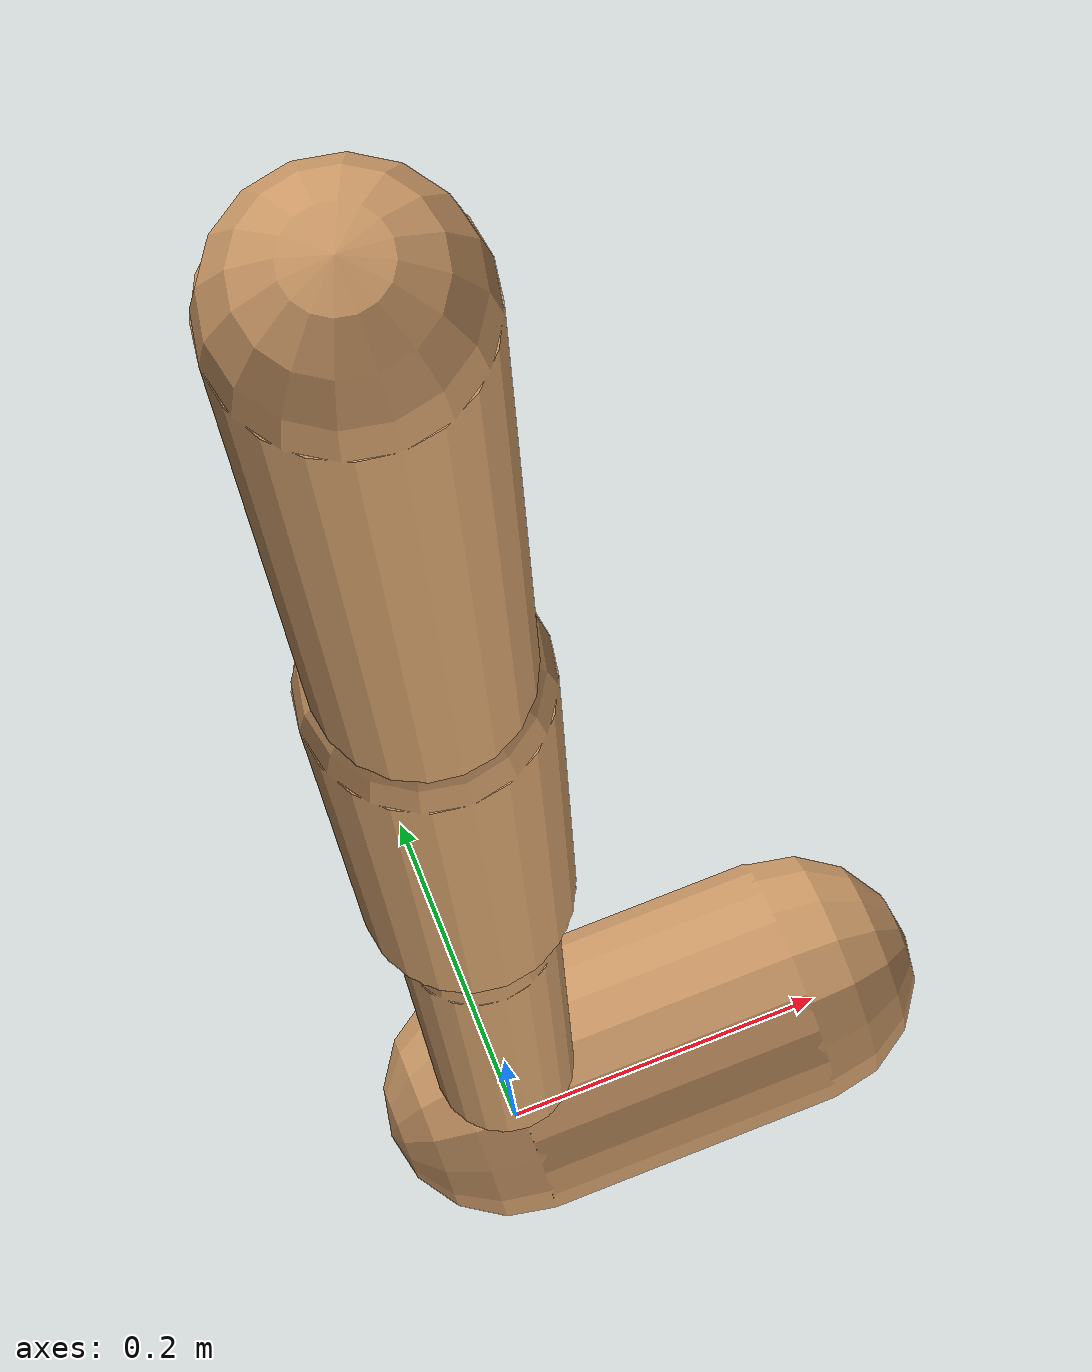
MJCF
<mujoco model="walker2d">
  <compiler angle="degree" coordinate="global" inertiafromgeom="true" />
  <default>
    <joint armature="0.01" damping=".1" limited="true" />
    <geom conaffinity="0" condim="3" contype="1" density="1000" friction="0.8 .1 .1" rgba="0.8 0.6 .4 1" />
  </default>
  <option integrator="RK4" timestep="0.002" />
  <worldbody>

    <body name="torso" pos="0 0 -0.1818767820137817">
      <joint armature="0" axis="1 0 0" damping="0" limited="false" name="ignorex" pos="0 0 0" stiffness="0" type="slide" />
      <joint armature="0" axis="0 0 1" damping="0" limited="false" name="ignorez" pos="0 0 0" ref="1.25" stiffness="0" type="slide" />
      <joint armature="0" axis="0 1 0" damping="0" limited="false" name="ignorey" pos="0 0 0" stiffness="0" type="hinge" />
      <geom fromto="0 0 1.45 0 0 1.05" name="torso_geom" size="0.04368572164033665" type="capsule" />
      <body name="thigh">
        <joint axis="0 -1 0" name="thigh_joint" pos="0 0 1.05" range="-150 0" type="hinge" />
        <geom fromto="0.0 0.0 1.05 0.0 0.0 0.686152159901265" name="thigh_geom" size="0.050066948770036895" type="capsule" />
        <body name="leg" pos="0.0 0.0 0.08615215990126501">
          <joint axis="0 -1 0" name="leg_joint" pos="0 0 0.6" range="-150 0" type="hinge" />
          <geom fromto="0.0 0.0 0.6 0.0 0.0 0.19572462211251668" name="leg_geom" size="0.040053559016029514" type="capsule" />
          <body name="foot" pos="0.0 0.0 0.09572462211251667">
            <joint axis="0 -1 0" name="foot_joint" pos="0 0 0.1" range="-45 45" type="hinge" />
            <geom fromto="0.0 0.0 0.1 0.18036484756686044 0.0 0.1" name="foot_geom" size="0.07627369744127782" type="capsule" />
          </body>
        </body>
      </body>

      <body name="thigh_left">
        <joint axis="0 -1 0" name="thigh_left_joint" pos="0 0 1.05" range="-150 0" type="hinge" />
        <geom fromto="0.0 0.0 1.05 0.0 0.0 0.686152159901265" name="thigh_left_geom" rgba=".7 .3 .6 1" size="0.050066948770036895" type="capsule" />
        <body name="leg_left" pos="0.0 0.0 0.08615215990126501">
          <joint axis="0 -1 0" name="leg_left_joint" pos="0 0 0.6" range="-150 0" type="hinge" />
          <geom fromto="0.0 0.0 0.6 0.0 0.0 0.19572462211251668" name="leg_left_geom" rgba=".7 .3 .6 1" size="0.040053559016029514" type="capsule" />
          <body name="foot_left" pos="0.0 0.0 0.09572462211251667">
            <joint axis="0 -1 0" name="foot_left_joint" pos="0 0 0.1" range="-45 45" type="hinge" />
            <geom fromto="0.0 0.0 0.1 0.18036484756686044 0.0 0.1" name="foot_left_geom" rgba=".7 .3 .6 1" size="0.07627369744127782" type="capsule" />
          </body>
        </body>
      </body>
    </body>
  </worldbody>
  <actuator>

    <motor ctrllimited="true" ctrlrange="-1.0 1.0" gear="100" joint="thigh_joint" />
    <motor ctrllimited="true" ctrlrange="-1.0 1.0" gear="100" joint="leg_joint" />
    <motor ctrllimited="true" ctrlrange="-1.0 1.0" gear="100" joint="foot_joint" />
    <motor ctrllimited="true" ctrlrange="-1.0 1.0" gear="100" joint="thigh_left_joint" />
    <motor ctrllimited="true" ctrlrange="-1.0 1.0" gear="100" joint="leg_left_joint" />
    <motor ctrllimited="true" ctrlrange="-1.0 1.0" gear="100" joint="foot_left_joint" />

  </actuator>
</mujoco>
